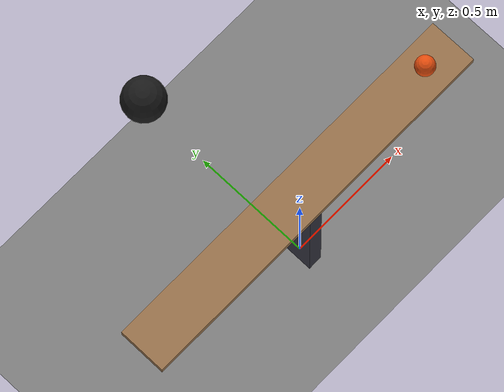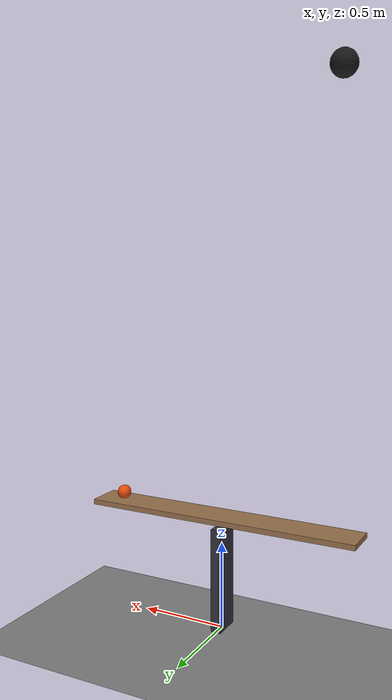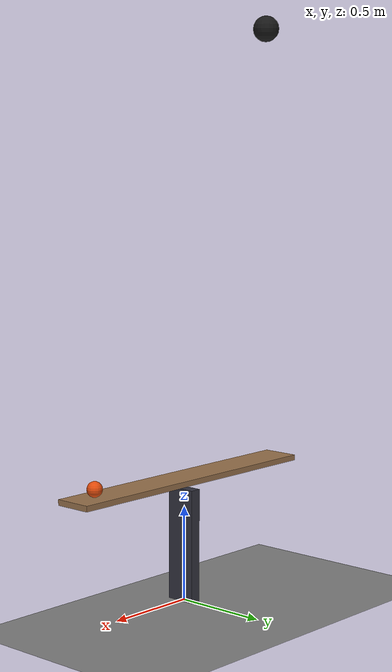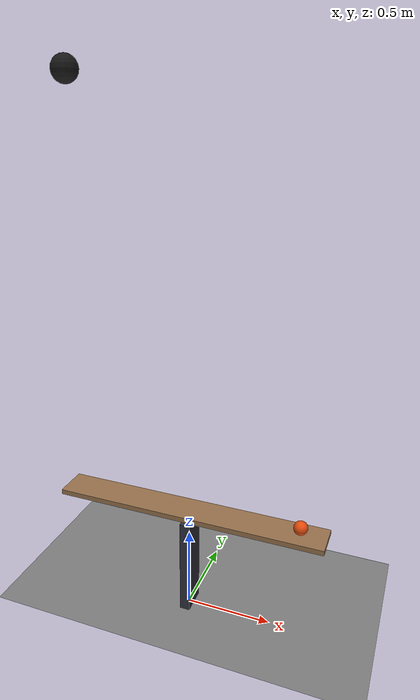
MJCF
<mujoco model="drop-powered_seesaw">
  <compiler angle="radian"/>
  <option timestep="0.002"/>
  <worldbody>
    <geom name="floor" type="plane" size="6 6 0.1" friction="0.8 0.005 0.002"/>
    <body name="stand">
      <geom name="stand" type="box" pos="0 0 0.3" size="0.03 0.08 0.3" rgba="0.2 0.2 0.25 1"/>
    </body>
    <body name="seesaw" pos="0 0 0.65">
      <joint name="seesaw_hinge" type="hinge" pos="0 0 0" axis="0 1 0" limited="true" range="-0.523599 0" damping="0.005" armature="0.0001"/>
      <geom name="seesaw" type="box" pos="0 0 0" size="0.8 0.1 0.015" mass="0.4" friction="0.7 0.005 0.002" solref="0.01 1" rgba="0.6 0.45 0.3 1"/>
    </body>
    <body name="ball" pos="0.65 0 0.705">
      <freejoint/>
      <geom name="ball" type="sphere" pos="0 0 0" size="0.04" mass="0.1" condim="6" friction="0.7 0.005 0.002" solref="0.01 1" rgba="0.9 0.3 0.05 1"/>
    </body>
    <body name="weight" pos="-0.65 0 3">
      <freejoint/>
      <geom name="weight" type="sphere" pos="0 0 0" size="0.07" mass="1" condim="6" friction="0.7 0.005 0.002" solref="0.01 1" rgba="0.1 0.1 0.1 1"/>
    </body>
  </worldbody>
  <keyframe>
    <key name="start" qpos="0 0.65 0 0.705 1 0 0 0 -0.65 0 3 1 0 0 0" qvel="0 0 0 0 0 0 0 0 0 0 0 0 0"/>
  </keyframe>
</mujoco>
